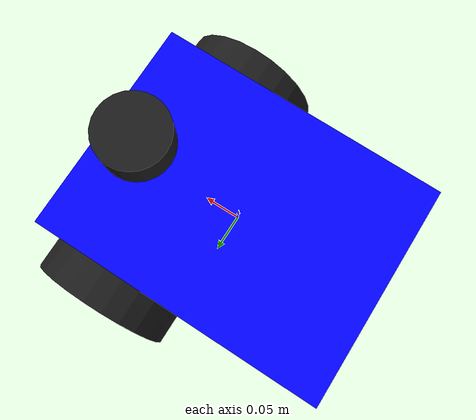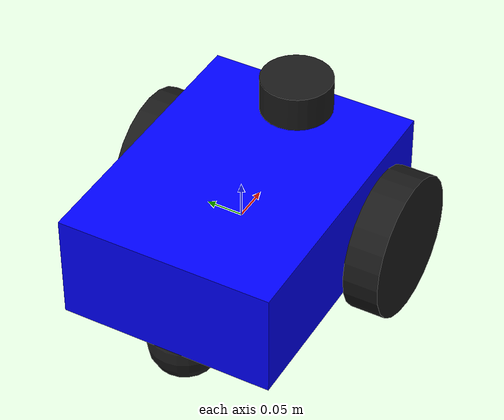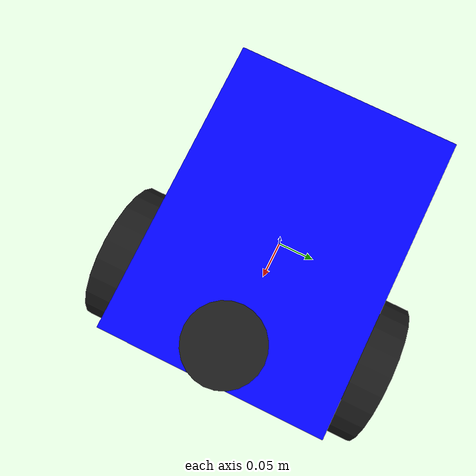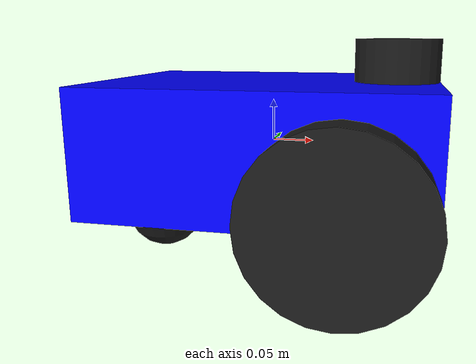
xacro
<?xml version="1.0"?>
<robot name="rescue_robot" xmlns:xacro="http://ros.org/wiki/xacro">
  <xacro:arg name="robot_name" default="robot"/>
  <xacro:arg name="color_rgba" default="0 0 1 1"/>

  <link name="$(arg robot_name)/base_link">
    <visual><geometry><box size="0.4 0.3 0.15"/></geometry><material name="body_color"><color rgba="$(arg color_rgba)"/></material></visual>
    <collision><geometry><box size="0.4 0.3 0.15"/></geometry></collision>
    <inertial><mass value="2.0"/><inertia ixx="0.02" ixy="0" ixz="0" iyy="0.02" iyz="0" izz="0.02"/></inertial>
  </link>
  <gazebo reference="$(arg robot_name)/base_link"><visual><material><ambient>$(arg color_rgba)</ambient><diffuse>$(arg color_rgba)</diffuse></material></visual></gazebo>

  <link name="$(arg robot_name)/left_wheel"><visual><geometry><cylinder radius="0.1" length="0.05"/></geometry><material name="black"><color rgba="0.1 0.1 0.1 1"/></material></visual><collision><geometry><cylinder radius="0.1" length="0.05"/></geometry></collision><inertial><mass value="0.5"/><inertia ixx="0.001" ixy="0" ixz="0" iyy="0.001" iyz="0" izz="0.001"/></inertial></link>
  <joint name="$(arg robot_name)/left_wheel_joint" type="continuous"><parent link="$(arg robot_name)/base_link"/><child link="$(arg robot_name)/left_wheel"/><origin xyz="0.1 0.175 -0.05" rpy="-1.5708 0 0"/><axis xyz="0 0 1"/></joint>

  <link name="$(arg robot_name)/right_wheel"><visual><geometry><cylinder radius="0.1" length="0.05"/></geometry><material name="black"><color rgba="0.1 0.1 0.1 1"/></material></visual><collision><geometry><cylinder radius="0.1" length="0.05"/></geometry></collision><inertial><mass value="0.5"/><inertia ixx="0.001" ixy="0" ixz="0" iyy="0.001" iyz="0" izz="0.001"/></inertial></link>
  <joint name="$(arg robot_name)/right_wheel_joint" type="continuous"><parent link="$(arg robot_name)/base_link"/><child link="$(arg robot_name)/right_wheel"/><origin xyz="0.1 -0.175 -0.05" rpy="-1.5708 0 0"/><axis xyz="0 0 1"/></joint>

  <link name="$(arg robot_name)/caster"><visual><geometry><sphere radius="0.05"/></geometry><material name="black"/></visual><collision><geometry><sphere radius="0.05"/></geometry></collision><inertial><mass value="0.2"/><inertia ixx="0.0005" ixy="0" ixz="0" iyy="0.0005" iyz="0" izz="0.0005"/></inertial></link>
  <joint name="$(arg robot_name)/caster_joint" type="fixed"><parent link="$(arg robot_name)/base_link"/><child link="$(arg robot_name)/caster"/><origin xyz="-0.15 0 -0.1" rpy="0 0 0"/></joint>
  <gazebo reference="$(arg robot_name)/caster"><mu1>0.0</mu1><mu2>0.0</mu2></gazebo>

  <link name="$(arg robot_name)/laser_frame"><visual><geometry><cylinder radius="0.05" length="0.05"/></geometry><material name="black"><color rgba="0.1 0.1 0.1 1"/></material></visual></link>
  <joint name="$(arg robot_name)/laser_joint" type="fixed"><parent link="$(arg robot_name)/base_link"/><child link="$(arg robot_name)/laser_frame"/><origin xyz="0.15 0 0.1" rpy="0 0 0"/></joint>

  <gazebo reference="$(arg robot_name)/laser_frame">
    <sensor name="lidar" type="gpu_lidar"><always_on>true</always_on><visualize>true</visualize><update_rate>10</update_rate><topic>/$(arg robot_name)/scan</topic><gz_frame_id>$(arg robot_name)/laser_frame</gz_frame_id>
      <ray><scan><horizontal><samples>360</samples><resolution>1.0</resolution><min_angle>-3.14159</min_angle><max_angle>3.14159</max_angle></horizontal></scan><range><min>0.15</min><max>30.0</max><resolution>0.01</resolution></range></ray>
    </sensor>
  </gazebo>

  <gazebo>
    <plugin filename="gz-sim-diff-drive-system" name="gz::sim::systems::DiffDrive">
      <left_joint>$(arg robot_name)/left_wheel_joint</left_joint>
      <right_joint>$(arg robot_name)/right_wheel_joint</right_joint>
      <wheel_separation>0.35</wheel_separation>
      <wheel_radius>0.1</wheel_radius>
      <odom_publish_frequency>30</odom_publish_frequency>
      <topic>/$(arg robot_name)/cmd_vel</topic>
      <odom_topic>/$(arg robot_name)/odom</odom_topic>
      <frame_id>$(arg robot_name)/odom</frame_id>
      <child_frame_id>$(arg robot_name)/base_link</child_frame_id>
      <publish_odom>true</publish_odom>
      <publish_odom_tf>true</publish_odom_tf>
    </plugin>
  </gazebo>
</robot>
